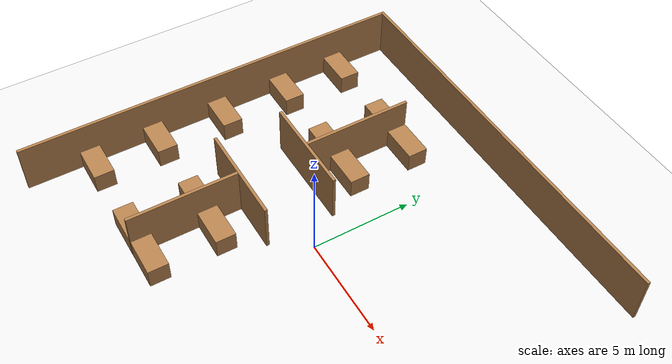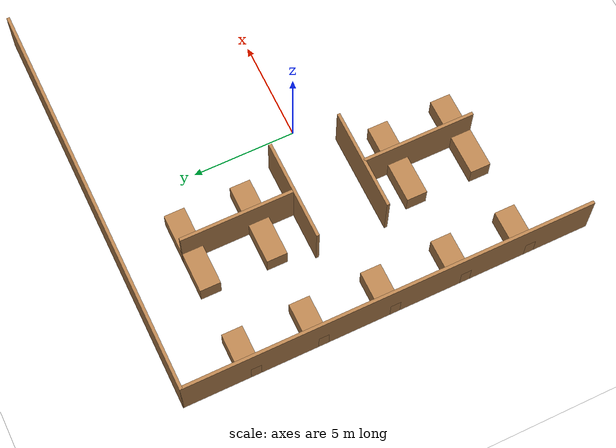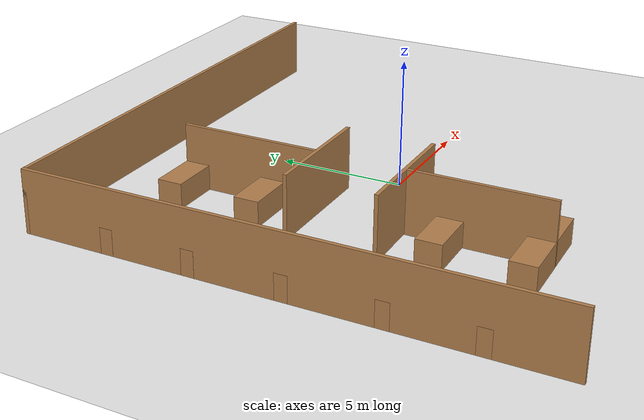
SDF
<sdf version="1.7">
 <world name="default">
  <model name="ground_plane">
   <static>1</static>
   <link name="link">
    <collision name="collision">
     <geometry><plane><normal>0 0 1</normal><size>100 100</size></plane></geometry>
     <surface>
      <contact><collide_bitmask>65535</collide_bitmask></contact>
      <friction><ode><mu>100</mu><mu2>50</mu2></ode></friction>
     </surface>
    </collision>
    <visual name="visual">
     <cast_shadows>0</cast_shadows>
     <geometry><plane><normal>0 0 1</normal><size>100 100</size></plane></geometry>
     <material>
      <script><uri>file://media/materials/scripts/gazebo.material</uri><name>Gazebo/White</name></script>
     </material>
    </visual>
   </link>
  </model>
  <model name="warehouse">
   <link name="Wall_14">
    <pose>-1.7 -3.65 0 0 -0 1.5708</pose>
    <inertial>
     <mass>1</mass>
     <inertia><ixx>1</ixx><ixy>0</ixy><ixz>0</ixz><iyy>1</iyy><iyz>0</iyz><izz>1</izz></inertia>
    </inertial>
    <visual name="Wall_14_Visual">
     <pose>0 0 1.25 0 -0 0</pose>
     <geometry><box><size>5 0.15 2.5</size></box></geometry>
     <material>
      <script><uri>file://media/materials/scripts/gazebo.material</uri><name>Gazebo/Wood</name></script>
      <ambient>1 1 1 1</ambient>
      <shader type="pixel"><normal_map>__default__</normal_map></shader>
      <diffuse>1 1 1 1</diffuse>
      <specular>0.2 0.2 0.2 1</specular>
      <emissive>0 0 0 1</emissive>
     </material>
     <meta><layer>0</layer></meta>
    </visual>
    <collision name="Wall_14_Collision">
     <pose>0 0 1.25 0 -0 0</pose>
     <geometry><box><size>5 0.15 2.5</size></box></geometry>
     <surface>
      <friction>
       <ode><mu>1</mu><mu2>1</mu2><fdir1>0 0 0</fdir1><slip1>0</slip1><slip2>0</slip2></ode>
       <torsional>
        <coefficient>1</coefficient>
        <patch_radius>0</patch_radius>
        <surface_radius>0</surface_radius>
        <use_patch_radius>1</use_patch_radius>
        <ode><slip>0</slip></ode>
       </torsional>
      </friction>
      <bounce><restitution_coefficient>0</restitution_coefficient><threshold>1e+06</threshold></bounce>
      <contact>
       <collide_without_contact>0</collide_without_contact>
       <collide_without_contact_bitmask>1</collide_without_contact_bitmask>
       <collide_bitmask>1</collide_bitmask>
       <ode>
        <soft_cfm>0</soft_cfm>
        <soft_erp>0.2</soft_erp>
        <kp>1e+13</kp>
        <kd>1</kd>
        <max_vel>0.01</max_vel>
        <min_depth>0</min_depth>
       </ode>
       <bullet>
        <split_impulse>1</split_impulse>
        <split_impulse_penetration_threshold>-0.01</split_impulse_penetration_threshold>
        <soft_cfm>0</soft_cfm>
        <soft_erp>0.2</soft_erp>
        <kp>1e+13</kp>
        <kd>1</kd>
       </bullet>
      </contact>
     </surface>
    </collision>
   </link>
   <link name="Wall_18">
    <pose>1.75 -3.65 0 0 -0 1.5708</pose>
    <inertial>
     <mass>1</mass>
     <inertia><ixx>1</ixx><ixy>0</ixy><ixz>0</ixz><iyy>1</iyy><iyz>0</iyz><izz>1</izz></inertia>
    </inertial>
    <visual name="Wall_18_Visual">
     <pose>0 0 1.25 0 -0 0</pose>
     <geometry><box><size>5 0.15 2.5</size></box></geometry>
     <material>
      <script><uri>file://media/materials/scripts/gazebo.material</uri><name>Gazebo/Wood</name></script>
      <ambient>1 1 1 1</ambient>
      <shader type="pixel"><normal_map>__default__</normal_map></shader>
      <diffuse>1 1 1 1</diffuse>
      <specular>0.2 0.2 0.2 1</specular>
      <emissive>0 0 0 1</emissive>
     </material>
     <meta><layer>0</layer></meta>
    </visual>
    <collision name="Wall_18_Collision">
     <pose>0 0 1.25 0 -0 0</pose>
     <geometry><box><size>5 0.15 2.5</size></box></geometry>
     <surface>
      <friction>
       <ode><mu>1</mu><mu2>1</mu2><fdir1>0 0 0</fdir1><slip1>0</slip1><slip2>0</slip2></ode>
       <torsional>
        <coefficient>1</coefficient>
        <patch_radius>0</patch_radius>
        <surface_radius>0</surface_radius>
        <use_patch_radius>1</use_patch_radius>
        <ode><slip>0</slip></ode>
       </torsional>
      </friction>
      <bounce><restitution_coefficient>0</restitution_coefficient><threshold>1e+06</threshold></bounce>
      <contact>
       <collide_without_contact>0</collide_without_contact>
       <collide_without_contact_bitmask>1</collide_without_contact_bitmask>
       <collide_bitmask>1</collide_bitmask>
       <ode>
        <soft_cfm>0</soft_cfm>
        <soft_erp>0.2</soft_erp>
        <kp>1e+13</kp>
        <kd>1</kd>
        <max_vel>0.01</max_vel>
        <min_depth>0</min_depth>
       </ode>
       <bullet>
        <split_impulse>1</split_impulse>
        <split_impulse_penetration_threshold>-0.01</split_impulse_penetration_threshold>
        <soft_cfm>0</soft_cfm>
        <soft_erp>0.2</soft_erp>
        <kp>1e+13</kp>
        <kd>1</kd>
       </bullet>
      </contact>
     </surface>
    </collision>
   </link>
   <link name="Wall_28">
    <pose>-4.5 -3.725 0 0 -0 3.14159</pose>
    <inertial>
     <mass>1</mass>
     <inertia><ixx>1</ixx><ixy>0</ixy><ixz>0</ixz><iyy>1</iyy><iyz>0</iyz><izz>1</izz></inertia>
    </inertial>
    <visual name="Wall_28_Visual">
     <pose>0 0 1.25 0 -0 0</pose>
     <geometry><box><size>5.5 0.15 2.5</size></box></geometry>
     <material>
      <script><uri>file://media/materials/scripts/gazebo.material</uri><name>Gazebo/Wood</name></script>
      <ambient>1 1 1 1</ambient>
      <shader type="pixel"><normal_map>__default__</normal_map></shader>
      <diffuse>1 1 1 1</diffuse>
      <specular>0.2 0.2 0.2 1</specular>
      <emissive>0 0 0 1</emissive>
     </material>
     <meta><layer>0</layer></meta>
    </visual>
    <collision name="Wall_28_Collision">
     <pose>0 0 1.25 0 -0 0</pose>
     <geometry><box><size>5.5 0.15 2.5</size></box></geometry>
     <surface>
      <friction>
       <ode><mu>1</mu><mu2>1</mu2><fdir1>0 0 0</fdir1><slip1>0</slip1><slip2>0</slip2></ode>
       <torsional>
        <coefficient>1</coefficient>
        <patch_radius>0</patch_radius>
        <surface_radius>0</surface_radius>
        <use_patch_radius>1</use_patch_radius>
        <ode><slip>0</slip></ode>
       </torsional>
      </friction>
      <bounce><restitution_coefficient>0</restitution_coefficient><threshold>1e+06</threshold></bounce>
      <contact>
       <collide_without_contact>0</collide_without_contact>
       <collide_without_contact_bitmask>1</collide_without_contact_bitmask>
       <collide_bitmask>1</collide_bitmask>
       <ode>
        <soft_cfm>0</soft_cfm>
        <soft_erp>0.2</soft_erp>
        <kp>1e+13</kp>
        <kd>1</kd>
        <max_vel>0.01</max_vel>
        <min_depth>0</min_depth>
       </ode>
       <bullet>
        <split_impulse>1</split_impulse>
        <split_impulse_penetration_threshold>-0.01</split_impulse_penetration_threshold>
        <soft_cfm>0</soft_cfm>
        <soft_erp>0.2</soft_erp>
        <kp>1e+13</kp>
        <kd>1</kd>
       </bullet>
      </contact>
     </surface>
    </collision>
   </link>
   <link name="Wall_3">
    <pose>-9.925 0 0 0 0 -1.5708</pose>
    <visual name="Wall_3_Visual">
     <pose>0 0 1.25 0 -0 0</pose>
     <geometry><box><size>20 0.15 2.5</size></box></geometry>
     <material>
      <script><uri>file://media/materials/scripts/gazebo.material</uri><name>Gazebo/Wood</name></script>
      <ambient>1 1 1 1</ambient>
      <shader type="pixel"/>
     </material>
     <meta><layer>0</layer></meta>
    </visual>
    <collision name="Wall_3_Collision">
     <pose>0 0 1.25 0 -0 0</pose>
     <geometry><box><size>20 0.15 2.5</size></box></geometry>
     <surface>
      <friction>
       <ode><mu>1</mu><mu2>1</mu2><fdir1>0 0 0</fdir1><slip1>0</slip1><slip2>0</slip2></ode>
       <torsional>
        <coefficient>1</coefficient>
        <patch_radius>0</patch_radius>
        <surface_radius>0</surface_radius>
        <use_patch_radius>1</use_patch_radius>
        <ode><slip>0</slip></ode>
       </torsional>
      </friction>
      <bounce><restitution_coefficient>0</restitution_coefficient><threshold>1e+06</threshold></bounce>
      <contact>
       <collide_without_contact>0</collide_without_contact>
       <collide_without_contact_bitmask>1</collide_without_contact_bitmask>
       <collide_bitmask>1</collide_bitmask>
       <ode>
        <soft_cfm>0</soft_cfm>
        <soft_erp>0.2</soft_erp>
        <kp>1e+13</kp>
        <kd>1</kd>
        <max_vel>0.01</max_vel>
        <min_depth>0</min_depth>
       </ode>
       <bullet>
        <split_impulse>1</split_impulse>
        <split_impulse_penetration_threshold>-0.01</split_impulse_penetration_threshold>
        <soft_cfm>0</soft_cfm>
        <soft_erp>0.2</soft_erp>
        <kp>1e+13</kp>
        <kd>1</kd>
       </bullet>
      </contact>
     </surface>
    </collision>
   </link>
   <link name="Wall_31">
    <pose>4.5 -3.725 0 0 -0 0</pose>
    <inertial>
     <mass>1</mass>
     <inertia><ixx>1</ixx><ixy>0</ixy><ixz>0</ixz><iyy>1</iyy><iyz>0</iyz><izz>1</izz></inertia>
    </inertial>
    <visual name="Wall_31_Visual">
     <pose>0 0 1.25 0 -0 0</pose>
     <geometry><box><size>5.5 0.15 2.5</size></box></geometry>
     <material>
      <script><uri>file://media/materials/scripts/gazebo.material</uri><name>Gazebo/Wood</name></script>
      <ambient>1 1 1 1</ambient>
      <shader type="pixel"><normal_map>__default__</normal_map></shader>
      <diffuse>1 1 1 1</diffuse>
      <specular>0.2 0.2 0.2 1</specular>
      <emissive>0 0 0 1</emissive>
     </material>
     <meta><layer>0</layer></meta>
    </visual>
    <collision name="Wall_31_Collision">
     <pose>0 0 1.25 0 -0 0</pose>
     <geometry><box><size>5.5 0.15 2.5</size></box></geometry>
     <surface>
      <friction>
       <ode><mu>1</mu><mu2>1</mu2><fdir1>0 0 0</fdir1><slip1>0</slip1><slip2>0</slip2></ode>
       <torsional>
        <coefficient>1</coefficient>
        <patch_radius>0</patch_radius>
        <surface_radius>0</surface_radius>
        <use_patch_radius>1</use_patch_radius>
        <ode><slip>0</slip></ode>
       </torsional>
      </friction>
      <bounce><restitution_coefficient>0</restitution_coefficient><threshold>1e+06</threshold></bounce>
      <contact>
       <collide_without_contact>0</collide_without_contact>
       <collide_without_contact_bitmask>1</collide_without_contact_bitmask>
       <collide_bitmask>1</collide_bitmask>
       <ode>
        <soft_cfm>0</soft_cfm>
        <soft_erp>0.2</soft_erp>
        <kp>1e+13</kp>
        <kd>1</kd>
        <max_vel>0.01</max_vel>
        <min_depth>0</min_depth>
       </ode>
       <bullet>
        <split_impulse>1</split_impulse>
        <split_impulse_penetration_threshold>-0.01</split_impulse_penetration_threshold>
        <soft_cfm>0</soft_cfm>
        <soft_erp>0.2</soft_erp>
        <kp>1e+13</kp>
        <kd>1</kd>
       </bullet>
      </contact>
     </surface>
    </collision>
   </link>
   <link name="Wall_4">
    <pose>-0 -9.925 0 0 -0 0</pose>
    <visual name="Wall_4_Visual">
     <pose>0 0 1.25 0 -0 0</pose>
     <geometry><box><size>20 0.15 2.5</size></box></geometry>
     <material>
      <script><uri>file://media/materials/scripts/gazebo.material</uri><name>Gazebo/Wood</name></script>
      <ambient>1 1 1 1</ambient>
      <shader type="pixel"/>
     </material>
     <meta><layer>0</layer></meta>
    </visual>
    <collision name="Wall_4_Collision">
     <pose>0 0 1.25 0 -0 0</pose>
     <geometry><box><size>20 0.15 2.5</size></box></geometry>
     <surface>
      <friction>
       <ode><mu>1</mu><mu2>1</mu2><fdir1>0 0 0</fdir1><slip1>0</slip1><slip2>0</slip2></ode>
       <torsional>
        <coefficient>1</coefficient>
        <patch_radius>0</patch_radius>
        <surface_radius>0</surface_radius>
        <use_patch_radius>1</use_patch_radius>
        <ode><slip>0</slip></ode>
       </torsional>
      </friction>
      <bounce><restitution_coefficient>0</restitution_coefficient><threshold>1e+06</threshold></bounce>
      <contact>
       <collide_without_contact>0</collide_without_contact>
       <collide_without_contact_bitmask>1</collide_without_contact_bitmask>
       <collide_bitmask>1</collide_bitmask>
       <ode>
        <soft_cfm>0</soft_cfm>
        <soft_erp>0.2</soft_erp>
        <kp>1e+13</kp>
        <kd>1</kd>
        <max_vel>0.01</max_vel>
        <min_depth>0</min_depth>
       </ode>
       <bullet>
        <split_impulse>1</split_impulse>
        <split_impulse_penetration_threshold>-0.01</split_impulse_penetration_threshold>
        <soft_cfm>0</soft_cfm>
        <soft_erp>0.2</soft_erp>
        <kp>1e+13</kp>
        <kd>1</kd>
       </bullet>
      </contact>
     </surface>
    </collision>
   </link>
   <link name="link_1_clone">
    <inertial>
     <mass>1</mass>
     <inertia>
      <ixx>0.166667</ixx>
      <ixy>0</ixy>
      <ixz>0</ixz>
      <iyy>0.166667</iyy>
      <iyz>0</iyz>
      <izz>0.166667</izz>
     </inertia>
    </inertial>
    <pose>-0 -9 0.5 0 -0 3.14</pose>
    <visual name="visual">
     <geometry><box><size>1 2 1</size></box></geometry>
     <material>
      <lighting>1</lighting>
      <script><uri>file://media/materials/scripts/gazebo.material</uri><name>Gazebo/Wood</name></script>
      <shader type="pixel"><normal_map>__default__</normal_map></shader>
      <ambient>0.3 0.3 0.3 1</ambient>
      <diffuse>0.7 0.7 0.7 1</diffuse>
      <specular>0.01 0.01 0.01 1</specular>
      <emissive>0 0 0 1</emissive>
     </material>
    </visual>
    <collision name="collision">
     <geometry><box><size>1 2 1</size></box></geometry>
     <surface>
      <friction>
       <ode><mu>1</mu><mu2>1</mu2><fdir1>0 0 0</fdir1><slip1>0</slip1><slip2>0</slip2></ode>
       <torsional>
        <coefficient>1</coefficient>
        <patch_radius>0</patch_radius>
        <surface_radius>0</surface_radius>
        <use_patch_radius>1</use_patch_radius>
        <ode><slip>0</slip></ode>
       </torsional>
      </friction>
      <bounce><restitution_coefficient>0</restitution_coefficient><threshold>1e+06</threshold></bounce>
      <contact>
       <collide_without_contact>0</collide_without_contact>
       <collide_without_contact_bitmask>1</collide_without_contact_bitmask>
       <collide_bitmask>1</collide_bitmask>
       <ode>
        <soft_cfm>0</soft_cfm>
        <soft_erp>0.2</soft_erp>
        <kp>1e+13</kp>
        <kd>1</kd>
        <max_vel>0.01</max_vel>
        <min_depth>0</min_depth>
       </ode>
       <bullet>
        <split_impulse>1</split_impulse>
        <split_impulse_penetration_threshold>-0.01</split_impulse_penetration_threshold>
        <soft_cfm>0</soft_cfm>
        <soft_erp>0.2</soft_erp>
        <kp>1e+13</kp>
        <kd>1</kd>
       </bullet>
      </contact>
     </surface>
    </collision>
   </link>
   <link name="link_1_clone_0">
    <inertial>
     <mass>1</mass>
     <inertia>
      <ixx>0.166667</ixx>
      <ixy>0</ixy>
      <ixz>0</ixz>
      <iyy>0.166667</iyy>
      <iyz>0</iyz>
      <izz>0.166667</izz>
     </inertia>
    </inertial>
    <pose>3.5 -9 0.5 0 -0 3.14</pose>
    <visual name="visual">
     <geometry><box><size>1 2 1</size></box></geometry>
     <material>
      <lighting>1</lighting>
      <script><uri>file://media/materials/scripts/gazebo.material</uri><name>Gazebo/Wood</name></script>
      <shader type="pixel"><normal_map>__default__</normal_map></shader>
      <ambient>0.3 0.3 0.3 1</ambient>
      <diffuse>0.7 0.7 0.7 1</diffuse>
      <specular>0.01 0.01 0.01 1</specular>
      <emissive>0 0 0 1</emissive>
     </material>
    </visual>
    <collision name="collision">
     <geometry><box><size>1 2 1</size></box></geometry>
     <surface>
      <friction>
       <ode><mu>1</mu><mu2>1</mu2><fdir1>0 0 0</fdir1><slip1>0</slip1><slip2>0</slip2></ode>
       <torsional>
        <coefficient>1</coefficient>
        <patch_radius>0</patch_radius>
        <surface_radius>0</surface_radius>
        <use_patch_radius>1</use_patch_radius>
        <ode><slip>0</slip></ode>
       </torsional>
      </friction>
      <bounce><restitution_coefficient>0</restitution_coefficient><threshold>1e+06</threshold></bounce>
      <contact>
       <collide_without_contact>0</collide_without_contact>
       <collide_without_contact_bitmask>1</collide_without_contact_bitmask>
       <collide_bitmask>1</collide_bitmask>
       <ode>
        <soft_cfm>0</soft_cfm>
        <soft_erp>0.2</soft_erp>
        <kp>1e+13</kp>
        <kd>1</kd>
        <max_vel>0.01</max_vel>
        <min_depth>0</min_depth>
       </ode>
       <bullet>
        <split_impulse>1</split_impulse>
        <split_impulse_penetration_threshold>-0.01</split_impulse_penetration_threshold>
        <soft_cfm>0</soft_cfm>
        <soft_erp>0.2</soft_erp>
        <kp>1e+13</kp>
        <kd>1</kd>
       </bullet>
      </contact>
     </surface>
    </collision>
   </link>
   <link name="link_1_clone_1">
    <inertial>
     <mass>1</mass>
     <inertia>
      <ixx>0.166667</ixx>
      <ixy>0</ixy>
      <ixz>0</ixz>
      <iyy>0.166667</iyy>
      <iyz>0</iyz>
      <izz>0.166667</izz>
     </inertia>
    </inertial>
    <pose>6.75 -9 0.5 0 -0 3.14</pose>
    <visual name="visual">
     <geometry><box><size>1 2 1</size></box></geometry>
     <material>
      <lighting>1</lighting>
      <script><uri>file://media/materials/scripts/gazebo.material</uri><name>Gazebo/Wood</name></script>
      <shader type="pixel"><normal_map>__default__</normal_map></shader>
      <ambient>0.3 0.3 0.3 1</ambient>
      <diffuse>0.7 0.7 0.7 1</diffuse>
      <specular>0.01 0.01 0.01 1</specular>
      <emissive>0 0 0 1</emissive>
     </material>
    </visual>
    <collision name="collision">
     <geometry><box><size>1 2 1</size></box></geometry>
     <surface>
      <friction>
       <ode><mu>1</mu><mu2>1</mu2><fdir1>0 0 0</fdir1><slip1>0</slip1><slip2>0</slip2></ode>
       <torsional>
        <coefficient>1</coefficient>
        <patch_radius>0</patch_radius>
        <surface_radius>0</surface_radius>
        <use_patch_radius>1</use_patch_radius>
        <ode><slip>0</slip></ode>
       </torsional>
      </friction>
      <bounce><restitution_coefficient>0</restitution_coefficient><threshold>1e+06</threshold></bounce>
      <contact>
       <collide_without_contact>0</collide_without_contact>
       <collide_without_contact_bitmask>1</collide_without_contact_bitmask>
       <collide_bitmask>1</collide_bitmask>
       <ode>
        <soft_cfm>0</soft_cfm>
        <soft_erp>0.2</soft_erp>
        <kp>1e+13</kp>
        <kd>1</kd>
        <max_vel>0.01</max_vel>
        <min_depth>0</min_depth>
       </ode>
       <bullet>
        <split_impulse>1</split_impulse>
        <split_impulse_penetration_threshold>-0.01</split_impulse_penetration_threshold>
        <soft_cfm>0</soft_cfm>
        <soft_erp>0.2</soft_erp>
        <kp>1e+13</kp>
        <kd>1</kd>
       </bullet>
      </contact>
     </surface>
    </collision>
   </link>
   <link name="link_1_clone_10">
    <inertial>
     <mass>1</mass>
     <inertia>
      <ixx>0.166667</ixx>
      <ixy>0</ixy>
      <ixz>0</ixz>
      <iyy>0.166667</iyy>
      <iyz>0</iyz>
      <izz>0.166667</izz>
     </inertia>
    </inertial>
    <pose>3.5 -4.75 0.5 0 -0 3.14</pose>
    <visual name="visual">
     <geometry><box><size>1 2 1</size></box></geometry>
     <material>
      <lighting>1</lighting>
      <script><uri>file://media/materials/scripts/gazebo.material</uri><name>Gazebo/Wood</name></script>
      <shader type="pixel"><normal_map>__default__</normal_map></shader>
      <ambient>0.3 0.3 0.3 1</ambient>
      <diffuse>0.7 0.7 0.7 1</diffuse>
      <specular>0.01 0.01 0.01 1</specular>
      <emissive>0 0 0 1</emissive>
     </material>
    </visual>
    <collision name="collision">
     <geometry><box><size>1 2 1</size></box></geometry>
     <surface>
      <friction>
       <ode><mu>1</mu><mu2>1</mu2><fdir1>0 0 0</fdir1><slip1>0</slip1><slip2>0</slip2></ode>
       <torsional>
        <coefficient>1</coefficient>
        <patch_radius>0</patch_radius>
        <surface_radius>0</surface_radius>
        <use_patch_radius>1</use_patch_radius>
        <ode><slip>0</slip></ode>
       </torsional>
      </friction>
      <bounce><restitution_coefficient>0</restitution_coefficient><threshold>1e+06</threshold></bounce>
      <contact>
       <collide_without_contact>0</collide_without_contact>
       <collide_without_contact_bitmask>1</collide_without_contact_bitmask>
       <collide_bitmask>1</collide_bitmask>
       <ode>
        <soft_cfm>0</soft_cfm>
        <soft_erp>0.2</soft_erp>
        <kp>1e+13</kp>
        <kd>1</kd>
        <max_vel>0.01</max_vel>
        <min_depth>0</min_depth>
       </ode>
       <bullet>
        <split_impulse>1</split_impulse>
        <split_impulse_penetration_threshold>-0.01</split_impulse_penetration_threshold>
        <soft_cfm>0</soft_cfm>
        <soft_erp>0.2</soft_erp>
        <kp>1e+13</kp>
        <kd>1</kd>
       </bullet>
      </contact>
     </surface>
    </collision>
   </link>
   <link name="link_1_clone_11">
    <inertial>
     <mass>1</mass>
     <inertia>
      <ixx>0.166667</ixx>
      <ixy>0</ixy>
      <ixz>0</ixz>
      <iyy>0.166667</iyy>
      <iyz>0</iyz>
      <izz>0.166667</izz>
     </inertia>
    </inertial>
    <pose>6.75305 -4.75 0.5 0 -0 3.14</pose>
    <visual name="visual">
     <geometry><box><size>1 2 1</size></box></geometry>
     <material>
      <lighting>1</lighting>
      <script><uri>file://media/materials/scripts/gazebo.material</uri><name>Gazebo/Wood</name></script>
      <shader type="pixel"><normal_map>__default__</normal_map></shader>
      <ambient>0.3 0.3 0.3 1</ambient>
      <diffuse>0.7 0.7 0.7 1</diffuse>
      <specular>0.01 0.01 0.01 1</specular>
      <emissive>0 0 0 1</emissive>
     </material>
    </visual>
    <collision name="collision">
     <geometry><box><size>1 2 1</size></box></geometry>
     <surface>
      <friction>
       <ode><mu>1</mu><mu2>1</mu2><fdir1>0 0 0</fdir1><slip1>0</slip1><slip2>0</slip2></ode>
       <torsional>
        <coefficient>1</coefficient>
        <patch_radius>0</patch_radius>
        <surface_radius>0</surface_radius>
        <use_patch_radius>1</use_patch_radius>
        <ode><slip>0</slip></ode>
       </torsional>
      </friction>
      <bounce><restitution_coefficient>0</restitution_coefficient><threshold>1e+06</threshold></bounce>
      <contact>
       <collide_without_contact>0</collide_without_contact>
       <collide_without_contact_bitmask>1</collide_without_contact_bitmask>
       <collide_bitmask>1</collide_bitmask>
       <ode>
        <soft_cfm>0</soft_cfm>
        <soft_erp>0.2</soft_erp>
        <kp>1e+13</kp>
        <kd>1</kd>
        <max_vel>0.01</max_vel>
        <min_depth>0</min_depth>
       </ode>
       <bullet>
        <split_impulse>1</split_impulse>
        <split_impulse_penetration_threshold>-0.01</split_impulse_penetration_threshold>
        <soft_cfm>0</soft_cfm>
        <soft_erp>0.2</soft_erp>
        <kp>1e+13</kp>
        <kd>1</kd>
       </bullet>
      </contact>
     </surface>
    </collision>
   </link>
   <link name="link_1_clone_2">
    <inertial>
     <mass>1</mass>
     <inertia>
      <ixx>0.166667</ixx>
      <ixy>0</ixy>
      <ixz>0</ixz>
      <iyy>0.166667</iyy>
      <iyz>0</iyz>
      <izz>0.166667</izz>
     </inertia>
    </inertial>
    <pose>-3.5 -9 0.5 0 -0 3.14</pose>
    <visual name="visual">
     <geometry><box><size>1 2 1</size></box></geometry>
     <material>
      <lighting>1</lighting>
      <script><uri>file://media/materials/scripts/gazebo.material</uri><name>Gazebo/Wood</name></script>
      <shader type="pixel"><normal_map>__default__</normal_map></shader>
      <ambient>0.3 0.3 0.3 1</ambient>
      <diffuse>0.7 0.7 0.7 1</diffuse>
      <specular>0.01 0.01 0.01 1</specular>
      <emissive>0 0 0 1</emissive>
     </material>
    </visual>
    <collision name="collision">
     <geometry><box><size>1 2 1</size></box></geometry>
     <surface>
      <friction>
       <ode><mu>1</mu><mu2>1</mu2><fdir1>0 0 0</fdir1><slip1>0</slip1><slip2>0</slip2></ode>
       <torsional>
        <coefficient>1</coefficient>
        <patch_radius>0</patch_radius>
        <surface_radius>0</surface_radius>
        <use_patch_radius>1</use_patch_radius>
        <ode><slip>0</slip></ode>
       </torsional>
      </friction>
      <bounce><restitution_coefficient>0</restitution_coefficient><threshold>1e+06</threshold></bounce>
      <contact>
       <collide_without_contact>0</collide_without_contact>
       <collide_without_contact_bitmask>1</collide_without_contact_bitmask>
       <collide_bitmask>1</collide_bitmask>
       <ode>
        <soft_cfm>0</soft_cfm>
        <soft_erp>0.2</soft_erp>
        <kp>1e+13</kp>
        <kd>1</kd>
        <max_vel>0.01</max_vel>
        <min_depth>0</min_depth>
       </ode>
       <bullet>
        <split_impulse>1</split_impulse>
        <split_impulse_penetration_threshold>-0.01</split_impulse_penetration_threshold>
        <soft_cfm>0</soft_cfm>
        <soft_erp>0.2</soft_erp>
        <kp>1e+13</kp>
        <kd>1</kd>
       </bullet>
      </contact>
     </surface>
    </collision>
   </link>
   <link name="link_1_clone_3">
    <inertial>
     <mass>1</mass>
     <inertia>
      <ixx>0.166667</ixx>
      <ixy>0</ixy>
      <ixz>0</ixz>
      <iyy>0.166667</iyy>
      <iyz>0</iyz>
      <izz>0.166667</izz>
     </inertia>
    </inertial>
    <pose>-6.75 -9 0.5 0 -0 3.14</pose>
    <visual name="visual">
     <geometry><box><size>1 2 1</size></box></geometry>
     <material>
      <lighting>1</lighting>
      <script><uri>file://media/materials/scripts/gazebo.material</uri><name>Gazebo/Wood</name></script>
      <shader type="pixel"><normal_map>__default__</normal_map></shader>
      <ambient>0.3 0.3 0.3 1</ambient>
      <diffuse>0.7 0.7 0.7 1</diffuse>
      <specular>0.01 0.01 0.01 1</specular>
      <emissive>0 0 0 1</emissive>
     </material>
    </visual>
    <collision name="collision">
     <geometry><box><size>1 2 1</size></box></geometry>
     <surface>
      <friction>
       <ode><mu>1</mu><mu2>1</mu2><fdir1>0 0 0</fdir1><slip1>0</slip1><slip2>0</slip2></ode>
       <torsional>
        <coefficient>1</coefficient>
        <patch_radius>0</patch_radius>
        <surface_radius>0</surface_radius>
        <use_patch_radius>1</use_patch_radius>
        <ode><slip>0</slip></ode>
       </torsional>
      </friction>
      <bounce><restitution_coefficient>0</restitution_coefficient><threshold>1e+06</threshold></bounce>
      <contact>
       <collide_without_contact>0</collide_without_contact>
       <collide_without_contact_bitmask>1</collide_without_contact_bitmask>
       <collide_bitmask>1</collide_bitmask>
       <ode>
        <soft_cfm>0</soft_cfm>
        <soft_erp>0.2</soft_erp>
        <kp>1e+13</kp>
        <kd>1</kd>
        <max_vel>0.01</max_vel>
        <min_depth>0</min_depth>
       </ode>
       <bullet>
        <split_impulse>1</split_impulse>
        <split_impulse_penetration_threshold>-0.01</split_impulse_penetration_threshold>
        <soft_cfm>0</soft_cfm>
        <soft_erp>0.2</soft_erp>
        <kp>1e+13</kp>
        <kd>1</kd>
       </bullet>
      </contact>
     </surface>
    </collision>
   </link>
   <link name="link_1_clone_4">
    <inertial>
     <mass>1</mass>
     <inertia>
      <ixx>0.166667</ixx>
      <ixy>0</ixy>
      <ixz>0</ixz>
      <iyy>0.166667</iyy>
      <iyz>0</iyz>
      <izz>0.166667</izz>
     </inertia>
    </inertial>
    <pose>-6.75 -2.75 0.5 0 -0 3.14</pose>
    <visual name="visual">
     <geometry><box><size>1 2 1</size></box></geometry>
     <material>
      <lighting>1</lighting>
      <script><uri>file://media/materials/scripts/gazebo.material</uri><name>Gazebo/Wood</name></script>
      <shader type="pixel"><normal_map>__default__</normal_map></shader>
      <ambient>0.3 0.3 0.3 1</ambient>
      <diffuse>0.7 0.7 0.7 1</diffuse>
      <specular>0.01 0.01 0.01 1</specular>
      <emissive>0 0 0 1</emissive>
     </material>
    </visual>
    <collision name="collision">
     <geometry><box><size>1 2 1</size></box></geometry>
     <surface>
      <friction>
       <ode><mu>1</mu><mu2>1</mu2><fdir1>0 0 0</fdir1><slip1>0</slip1><slip2>0</slip2></ode>
       <torsional>
        <coefficient>1</coefficient>
        <patch_radius>0</patch_radius>
        <surface_radius>0</surface_radius>
        <use_patch_radius>1</use_patch_radius>
        <ode><slip>0</slip></ode>
       </torsional>
      </friction>
      <bounce><restitution_coefficient>0</restitution_coefficient><threshold>1e+06</threshold></bounce>
      <contact>
       <collide_without_contact>0</collide_without_contact>
       <collide_without_contact_bitmask>1</collide_without_contact_bitmask>
       <collide_bitmask>1</collide_bitmask>
       <ode>
        <soft_cfm>0</soft_cfm>
        <soft_erp>0.2</soft_erp>
        <kp>1e+13</kp>
        <kd>1</kd>
        <max_vel>0.01</max_vel>
        <min_depth>0</min_depth>
       </ode>
       <bullet>
        <split_impulse>1</split_impulse>
        <split_impulse_penetration_threshold>-0.01</split_impulse_penetration_threshold>
        <soft_cfm>0</soft_cfm>
        <soft_erp>0.2</soft_erp>
        <kp>1e+13</kp>
        <kd>1</kd>
       </bullet>
      </contact>
     </surface>
    </collision>
   </link>
   <link name="link_1_clone_5">
    <inertial>
     <mass>1</mass>
     <inertia>
      <ixx>0.166667</ixx>
      <ixy>0</ixy>
      <ixz>0</ixz>
      <iyy>0.166667</iyy>
      <iyz>0</iyz>
      <izz>0.166667</izz>
     </inertia>
    </inertial>
    <pose>-3.5 -2.75 0.5 0 -0 3.14</pose>
    <visual name="visual">
     <geometry><box><size>1 2 1</size></box></geometry>
     <material>
      <lighting>1</lighting>
      <script><uri>file://media/materials/scripts/gazebo.material</uri><name>Gazebo/Wood</name></script>
      <shader type="pixel"><normal_map>__default__</normal_map></shader>
      <ambient>0.3 0.3 0.3 1</ambient>
      <diffuse>0.7 0.7 0.7 1</diffuse>
      <specular>0.01 0.01 0.01 1</specular>
      <emissive>0 0 0 1</emissive>
     </material>
    </visual>
    <collision name="collision">
     <geometry><box><size>1 2 1</size></box></geometry>
     <surface>
      <friction>
       <ode><mu>1</mu><mu2>1</mu2><fdir1>0 0 0</fdir1><slip1>0</slip1><slip2>0</slip2></ode>
       <torsional>
        <coefficient>1</coefficient>
        <patch_radius>0</patch_radius>
        <surface_radius>0</surface_radius>
        <use_patch_radius>1</use_patch_radius>
        <ode><slip>0</slip></ode>
       </torsional>
      </friction>
      <bounce><restitution_coefficient>0</restitution_coefficient><threshold>1e+06</threshold></bounce>
      <contact>
       <collide_without_contact>0</collide_without_contact>
       <collide_without_contact_bitmask>1</collide_without_contact_bitmask>
       <collide_bitmask>1</collide_bitmask>
       <ode>
        <soft_cfm>0</soft_cfm>
        <soft_erp>0.2</soft_erp>
        <kp>1e+13</kp>
        <kd>1</kd>
        <max_vel>0.01</max_vel>
        <min_depth>0</min_depth>
       </ode>
       <bullet>
        <split_impulse>1</split_impulse>
        <split_impulse_penetration_threshold>-0.01</split_impulse_penetration_threshold>
        <soft_cfm>0</soft_cfm>
        <soft_erp>0.2</soft_erp>
        <kp>1e+13</kp>
        <kd>1</kd>
       </bullet>
      </contact>
     </surface>
    </collision>
   </link>
   <link name="link_1_clone_6">
    <inertial>
     <mass>1</mass>
     <inertia>
      <ixx>0.166667</ixx>
      <ixy>0</ixy>
      <ixz>0</ixz>
      <iyy>0.166667</iyy>
      <iyz>0</iyz>
      <izz>0.166667</izz>
     </inertia>
    </inertial>
    <pose>-6.75 -4.75 0.5 0 -0 3.14</pose>
    <visual name="visual">
     <geometry><box><size>1 2 1</size></box></geometry>
     <material>
      <lighting>1</lighting>
      <script><uri>file://media/materials/scripts/gazebo.material</uri><name>Gazebo/Wood</name></script>
      <shader type="pixel"><normal_map>__default__</normal_map></shader>
      <ambient>0.3 0.3 0.3 1</ambient>
      <diffuse>0.7 0.7 0.7 1</diffuse>
      <specular>0.01 0.01 0.01 1</specular>
      <emissive>0 0 0 1</emissive>
     </material>
    </visual>
    <collision name="collision">
     <geometry><box><size>1 2 1</size></box></geometry>
     <surface>
      <friction>
       <ode><mu>1</mu><mu2>1</mu2><fdir1>0 0 0</fdir1><slip1>0</slip1><slip2>0</slip2></ode>
       <torsional>
        <coefficient>1</coefficient>
        <patch_radius>0</patch_radius>
        <surface_radius>0</surface_radius>
        <use_patch_radius>1</use_patch_radius>
        <ode><slip>0</slip></ode>
       </torsional>
      </friction>
      <bounce><restitution_coefficient>0</restitution_coefficient><threshold>1e+06</threshold></bounce>
      <contact>
       <collide_without_contact>0</collide_without_contact>
       <collide_without_contact_bitmask>1</collide_without_contact_bitmask>
       <collide_bitmask>1</collide_bitmask>
       <ode>
        <soft_cfm>0</soft_cfm>
        <soft_erp>0.2</soft_erp>
        <kp>1e+13</kp>
        <kd>1</kd>
        <max_vel>0.01</max_vel>
        <min_depth>0</min_depth>
       </ode>
       <bullet>
        <split_impulse>1</split_impulse>
        <split_impulse_penetration_threshold>-0.01</split_impulse_penetration_threshold>
        <soft_cfm>0</soft_cfm>
        <soft_erp>0.2</soft_erp>
        <kp>1e+13</kp>
        <kd>1</kd>
       </bullet>
      </contact>
     </surface>
    </collision>
   </link>
   <link name="link_1_clone_7">
    <inertial>
     <mass>1</mass>
     <inertia>
      <ixx>0.166667</ixx>
      <ixy>0</ixy>
      <ixz>0</ixz>
      <iyy>0.166667</iyy>
      <iyz>0</iyz>
      <izz>0.166667</izz>
     </inertia>
    </inertial>
    <pose>-3.5 -4.75 0.5 0 -0 3.14</pose>
    <visual name="visual">
     <geometry><box><size>1 2 1</size></box></geometry>
     <material>
      <lighting>1</lighting>
      <script><uri>file://media/materials/scripts/gazebo.material</uri><name>Gazebo/Wood</name></script>
      <shader type="pixel"><normal_map>__default__</normal_map></shader>
      <ambient>0.3 0.3 0.3 1</ambient>
      <diffuse>0.7 0.7 0.7 1</diffuse>
      <specular>0.01 0.01 0.01 1</specular>
      <emissive>0 0 0 1</emissive>
     </material>
    </visual>
    <collision name="collision">
     <geometry><box><size>1 2 1</size></box></geometry>
     <surface>
      <friction>
       <ode><mu>1</mu><mu2>1</mu2><fdir1>0 0 0</fdir1><slip1>0</slip1><slip2>0</slip2></ode>
       <torsional>
        <coefficient>1</coefficient>
        <patch_radius>0</patch_radius>
        <surface_radius>0</surface_radius>
        <use_patch_radius>1</use_patch_radius>
        <ode><slip>0</slip></ode>
       </torsional>
      </friction>
      <bounce><restitution_coefficient>0</restitution_coefficient><threshold>1e+06</threshold></bounce>
      <contact>
       <collide_without_contact>0</collide_without_contact>
       <collide_without_contact_bitmask>1</collide_without_contact_bitmask>
       <collide_bitmask>1</collide_bitmask>
       <ode>
        <soft_cfm>0</soft_cfm>
        <soft_erp>0.2</soft_erp>
        <kp>1e+13</kp>
        <kd>1</kd>
        <max_vel>0.01</max_vel>
        <min_depth>0</min_depth>
       </ode>
       <bullet>
        <split_impulse>1</split_impulse>
        <split_impulse_penetration_threshold>-0.01</split_impulse_penetration_threshold>
        <soft_cfm>0</soft_cfm>
        <soft_erp>0.2</soft_erp>
        <kp>1e+13</kp>
        <kd>1</kd>
       </bullet>
      </contact>
     </surface>
    </collision>
   </link>
   <link name="link_1_clone_8">
    <inertial>
     <mass>1</mass>
     <inertia>
      <ixx>0.166667</ixx>
      <ixy>0</ixy>
      <ixz>0</ixz>
      <iyy>0.166667</iyy>
      <iyz>0</iyz>
      <izz>0.166667</izz>
     </inertia>
    </inertial>
    <pose>3.5 -2.75 0.5 0 -0 3.14</pose>
    <visual name="visual">
     <geometry><box><size>1 2 1</size></box></geometry>
     <material>
      <lighting>1</lighting>
      <script><uri>file://media/materials/scripts/gazebo.material</uri><name>Gazebo/Wood</name></script>
      <shader type="pixel"><normal_map>__default__</normal_map></shader>
      <ambient>0.3 0.3 0.3 1</ambient>
      <diffuse>0.7 0.7 0.7 1</diffuse>
      <specular>0.01 0.01 0.01 1</specular>
      <emissive>0 0 0 1</emissive>
     </material>
    </visual>
    <collision name="collision">
     <geometry><box><size>1 2 1</size></box></geometry>
     <surface>
      <friction>
       <ode><mu>1</mu><mu2>1</mu2><fdir1>0 0 0</fdir1><slip1>0</slip1><slip2>0</slip2></ode>
       <torsional>
        <coefficient>1</coefficient>
        <patch_radius>0</patch_radius>
        <surface_radius>0</surface_radius>
        <use_patch_radius>1</use_patch_radius>
        <ode><slip>0</slip></ode>
       </torsional>
      </friction>
      <bounce><restitution_coefficient>0</restitution_coefficient><threshold>1e+06</threshold></bounce>
      <contact>
       <collide_without_contact>0</collide_without_contact>
       <collide_without_contact_bitmask>1</collide_without_contact_bitmask>
       <collide_bitmask>1</collide_bitmask>
       <ode>
        <soft_cfm>0</soft_cfm>
        <soft_erp>0.2</soft_erp>
        <kp>1e+13</kp>
        <kd>1</kd>
        <max_vel>0.01</max_vel>
        <min_depth>0</min_depth>
       </ode>
       <bullet>
        <split_impulse>1</split_impulse>
        <split_impulse_penetration_threshold>-0.01</split_impulse_penetration_threshold>
        <soft_cfm>0</soft_cfm>
        <soft_erp>0.2</soft_erp>
        <kp>1e+13</kp>
        <kd>1</kd>
       </bullet>
      </contact>
     </surface>
    </collision>
   </link>
   <link name="link_1_clone_9">
    <inertial>
     <mass>1</mass>
     <inertia>
      <ixx>0.166667</ixx>
      <ixy>0</ixy>
      <ixz>0</ixz>
      <iyy>0.166667</iyy>
      <iyz>0</iyz>
      <izz>0.166667</izz>
     </inertia>
    </inertial>
    <pose>6.75 -2.75 0.5 0 -0 3.14</pose>
    <visual name="visual">
     <geometry><box><size>1 2 1</size></box></geometry>
     <material>
      <lighting>1</lighting>
      <script><uri>file://media/materials/scripts/gazebo.material</uri><name>Gazebo/Wood</name></script>
      <shader type="pixel"><normal_map>__default__</normal_map></shader>
      <ambient>0.3 0.3 0.3 1</ambient>
      <diffuse>0.7 0.7 0.7 1</diffuse>
      <specular>0.01 0.01 0.01 1</specular>
      <emissive>0 0 0 1</emissive>
     </material>
    </visual>
    <collision name="collision">
     <geometry><box><size>1 2 1</size></box></geometry>
     <surface>
      <friction>
       <ode><mu>1</mu><mu2>1</mu2><fdir1>0 0 0</fdir1><slip1>0</slip1><slip2>0</slip2></ode>
       <torsional>
        <coefficient>1</coefficient>
        <patch_radius>0</patch_radius>
        <surface_radius>0</surface_radius>
        <use_patch_radius>1</use_patch_radius>
        <ode><slip>0</slip></ode>
       </torsional>
      </friction>
      <bounce><restitution_coefficient>0</restitution_coefficient><threshold>1e+06</threshold></bounce>
      <contact>
       <collide_without_contact>0</collide_without_contact>
       <collide_without_contact_bitmask>1</collide_without_contact_bitmask>
       <collide_bitmask>1</collide_bitmask>
       <ode>
        <soft_cfm>0</soft_cfm>
        <soft_erp>0.2</soft_erp>
        <kp>1e+13</kp>
        <kd>1</kd>
        <max_vel>0.01</max_vel>
        <min_depth>0</min_depth>
       </ode>
       <bullet>
        <split_impulse>1</split_impulse>
        <split_impulse_penetration_threshold>-0.01</split_impulse_penetration_threshold>
        <soft_cfm>0</soft_cfm>
        <soft_erp>0.2</soft_erp>
        <kp>1e+13</kp>
        <kd>1</kd>
       </bullet>
      </contact>
     </surface>
    </collision>
   </link>
   <static>1</static>
   <pose>0 0 0 0 0 -1.57</pose>
  </model>
 </world>
</sdf>
